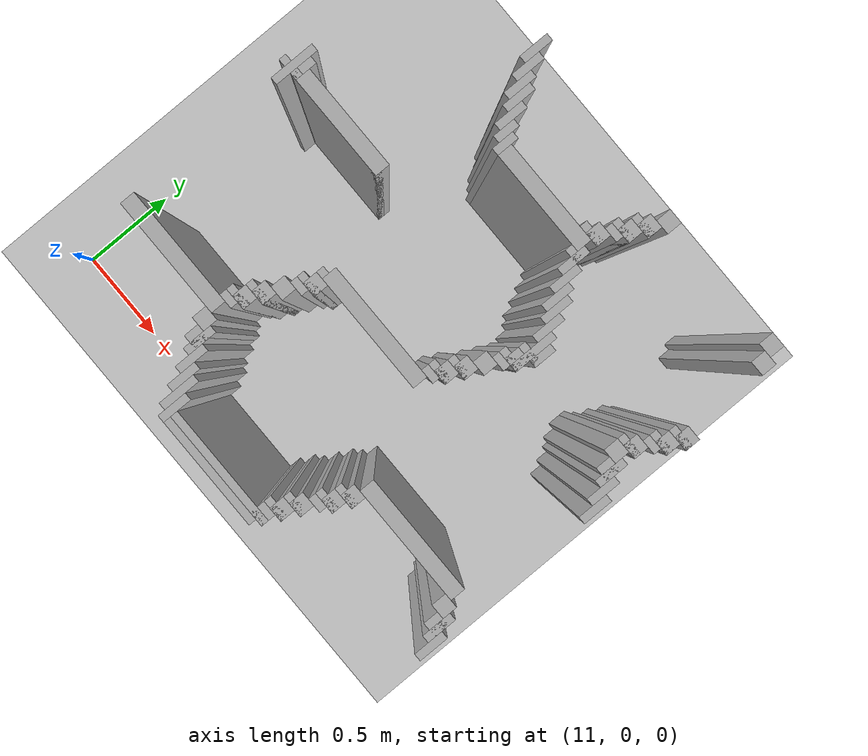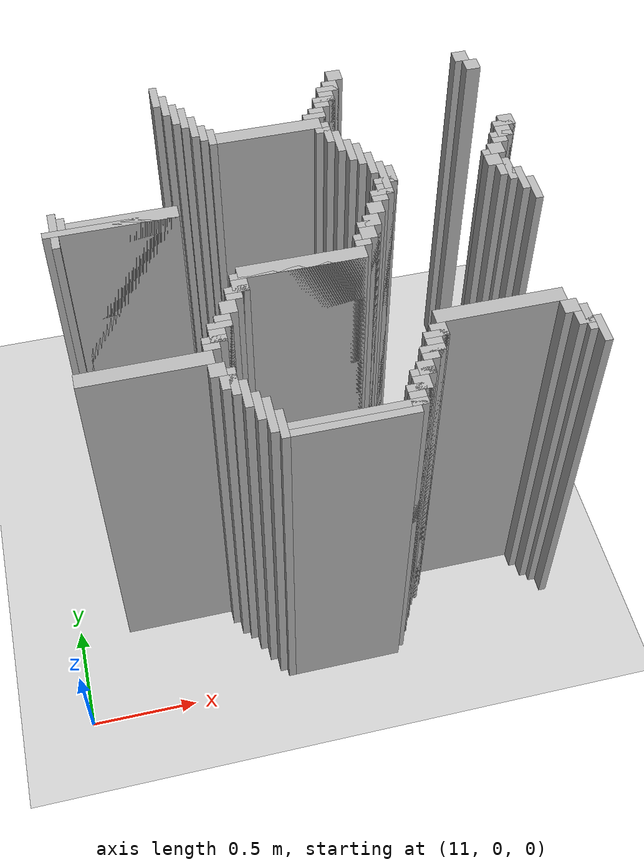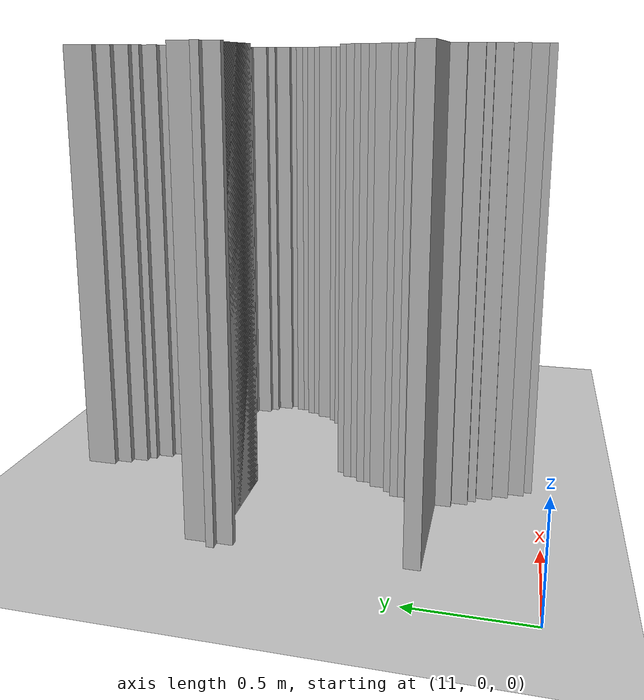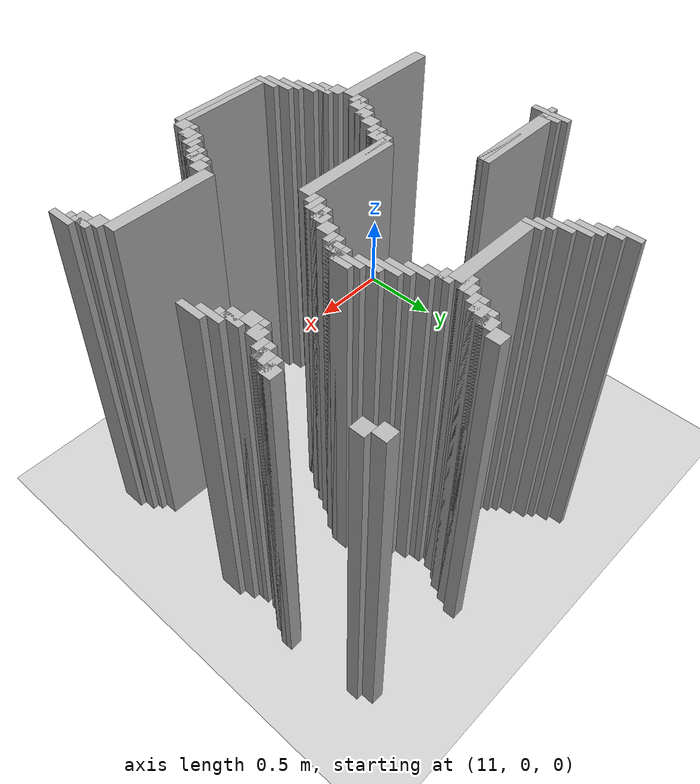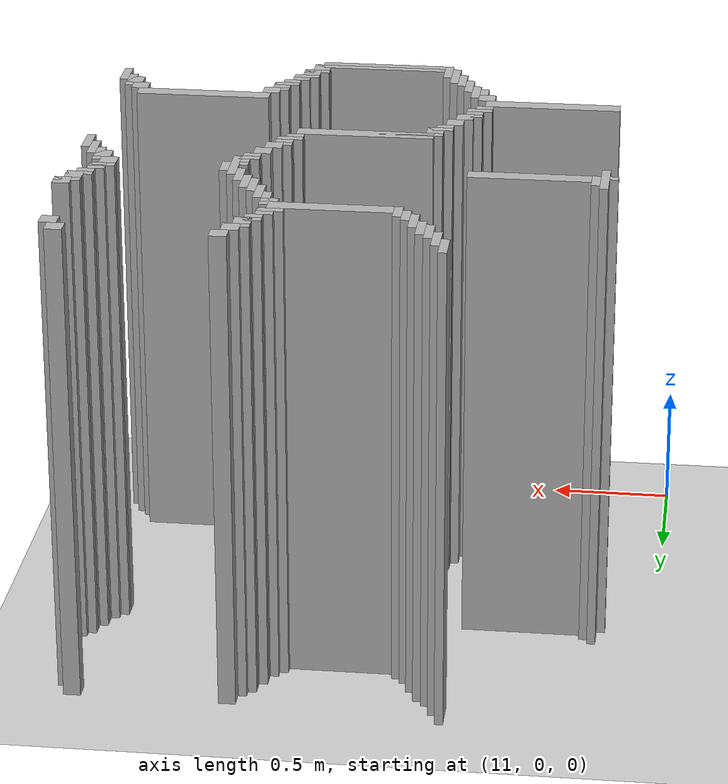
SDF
<sdf version="1.6">
 <world name="slam_world">
  <model name="ground_plane">
   <static>true</static>
   <link name="link">
    <collision name="collision">
     <geometry><plane><normal>0 0 1</normal><size>100 100</size></plane></geometry>
    </collision>
    <visual name="visual">
     <geometry><plane><normal>0 0 1</normal><size>100 100</size></plane></geometry>
     <material>
      <ambient>0.8 0.8 0.8 1</ambient>
      <diffuse>0.8 0.8 0.8 1</diffuse>
      <specular>0.8 0.8 0.8 1</specular>
     </material>
    </visual>
   </link>
  </model>
  <model name="wall_5173">
   <static>true</static>
   <pose>11.81554524361949 2.088167053364269 1.0 0 0 0</pose>
   <link name="link">
    <collision name="collision">
     <geometry><box><size>0.03480278422273782 0.13921113689095127 2.0</size></box></geometry>
    </collision>
    <visual name="visual">
     <geometry><box><size>0.03480278422273782 0.13921113689095127 2.0</size></box></geometry>
     <material><ambient>0.5 0.5 0.5 1</ambient><diffuse>0.7 0.7 0.7 1</diffuse></material>
    </visual>
   </link>
  </model>
  <model name="wall_5203">
   <static>true</static>
   <pose>11.850348027842227 2.0185614849187936 1.0 0 0 0</pose>
   <link name="link">
    <collision name="collision">
     <geometry><box><size>0.03480278422273782 0.13921113689095127 2.0</size></box></geometry>
    </collision>
    <visual name="visual">
     <geometry><box><size>0.03480278422273782 0.13921113689095127 2.0</size></box></geometry>
     <material><ambient>0.5 0.5 0.5 1</ambient><diffuse>0.7 0.7 0.7 1</diffuse></material>
    </visual>
   </link>
  </model>
  <model name="wall_5204">
   <static>true</static>
   <pose>12.668213457076565 2.053364269141531 1.0 0 0 0</pose>
   <link name="link">
    <collision name="collision">
     <geometry><box><size>0.06960556844547564 0.06960556844547564 2.0</size></box></geometry>
    </collision>
    <visual name="visual">
     <geometry><box><size>0.06960556844547564 0.06960556844547564 2.0</size></box></geometry>
     <material><ambient>0.5 0.5 0.5 1</ambient><diffuse>0.7 0.7 0.7 1</diffuse></material>
    </visual>
   </link>
  </model>
  <model name="wall_5205">
   <static>true</static>
   <pose>13.294663573085847 2.053364269141531 1.0 0 0 0</pose>
   <link name="link">
    <collision name="collision">
     <geometry><box><size>0.06960556844547564 0.06960556844547564 2.0</size></box></geometry>
    </collision>
    <visual name="visual">
     <geometry><box><size>0.06960556844547564 0.06960556844547564 2.0</size></box></geometry>
     <material><ambient>0.5 0.5 0.5 1</ambient><diffuse>0.7 0.7 0.7 1</diffuse></material>
    </visual>
   </link>
  </model>
  <model name="wall_5218">
   <static>true</static>
   <pose>11.885150812064964 1.948955916473318 1.0 0 0 0</pose>
   <link name="link">
    <collision name="collision">
     <geometry><box><size>0.03480278422273782 0.13921113689095127 2.0</size></box></geometry>
    </collision>
    <visual name="visual">
     <geometry><box><size>0.03480278422273782 0.13921113689095127 2.0</size></box></geometry>
     <material><ambient>0.5 0.5 0.5 1</ambient><diffuse>0.7 0.7 0.7 1</diffuse></material>
    </visual>
   </link>
  </model>
  <model name="wall_5219">
   <static>true</static>
   <pose>12.633410672853827 1.9837587006960555 1.0 0 0 0</pose>
   <link name="link">
    <collision name="collision">
     <geometry><box><size>0.06960556844547564 0.06960556844547564 2.0</size></box></geometry>
    </collision>
    <visual name="visual">
     <geometry><box><size>0.06960556844547564 0.06960556844547564 2.0</size></box></geometry>
     <material><ambient>0.5 0.5 0.5 1</ambient><diffuse>0.7 0.7 0.7 1</diffuse></material>
    </visual>
   </link>
  </model>
  <model name="wall_5220">
   <static>true</static>
   <pose>13.329466357308585 1.9837587006960555 1.0 0 0 0</pose>
   <link name="link">
    <collision name="collision">
     <geometry><box><size>0.06960556844547564 0.06960556844547564 2.0</size></box></geometry>
    </collision>
    <visual name="visual">
     <geometry><box><size>0.06960556844547564 0.06960556844547564 2.0</size></box></geometry>
     <material><ambient>0.5 0.5 0.5 1</ambient><diffuse>0.7 0.7 0.7 1</diffuse></material>
    </visual>
   </link>
  </model>
  <model name="wall_5233">
   <static>true</static>
   <pose>11.919953596287703 1.91415313225058 1.0 0 0 0</pose>
   <link name="link">
    <collision name="collision">
     <geometry><box><size>0.03480278422273782 0.13921113689095127 2.0</size></box></geometry>
    </collision>
    <visual name="visual">
     <geometry><box><size>0.03480278422273782 0.13921113689095127 2.0</size></box></geometry>
     <material><ambient>0.5 0.5 0.5 1</ambient><diffuse>0.7 0.7 0.7 1</diffuse></material>
    </visual>
   </link>
  </model>
  <model name="wall_5234">
   <static>true</static>
   <pose>12.616009280742459 1.9663573085846866 1.0 0 0 0</pose>
   <link name="link">
    <collision name="collision">
     <geometry><box><size>0.10440835266821345 0.03480278422273782 2.0</size></box></geometry>
    </collision>
    <visual name="visual">
     <geometry><box><size>0.10440835266821345 0.03480278422273782 2.0</size></box></geometry>
     <material><ambient>0.5 0.5 0.5 1</ambient><diffuse>0.7 0.7 0.7 1</diffuse></material>
    </visual>
   </link>
  </model>
  <model name="wall_5245">
   <static>true</static>
   <pose>12.59860788863109 1.91415313225058 1.0 0 0 0</pose>
   <link name="link">
    <collision name="collision">
     <geometry><box><size>0.06960556844547564 0.06960556844547564 2.0</size></box></geometry>
    </collision>
    <visual name="visual">
     <geometry><box><size>0.06960556844547564 0.06960556844547564 2.0</size></box></geometry>
     <material><ambient>0.5 0.5 0.5 1</ambient><diffuse>0.7 0.7 0.7 1</diffuse></material>
    </visual>
   </link>
  </model>
  <model name="wall_5258">
   <static>true</static>
   <pose>11.95475638051044 1.8445475638051043 1.0 0 0 0</pose>
   <link name="link">
    <collision name="collision">
     <geometry><box><size>0.03480278422273782 0.13921113689095127 2.0</size></box></geometry>
    </collision>
    <visual name="visual">
     <geometry><box><size>0.03480278422273782 0.13921113689095127 2.0</size></box></geometry>
     <material><ambient>0.5 0.5 0.5 1</ambient><diffuse>0.7 0.7 0.7 1</diffuse></material>
    </visual>
   </link>
  </model>
  <model name="wall_5259">
   <static>true</static>
   <pose>12.581206496519721 1.896751740139211 1.0 0 0 0</pose>
   <link name="link">
    <collision name="collision">
     <geometry><box><size>0.10440835266821345 0.03480278422273782 2.0</size></box></geometry>
    </collision>
    <visual name="visual">
     <geometry><box><size>0.10440835266821345 0.03480278422273782 2.0</size></box></geometry>
     <material><ambient>0.5 0.5 0.5 1</ambient><diffuse>0.7 0.7 0.7 1</diffuse></material>
    </visual>
   </link>
  </model>
  <model name="wall_5270">
   <static>true</static>
   <pose>12.563805104408353 1.8619489559164732 1.0 0 0 0</pose>
   <link name="link">
    <collision name="collision">
     <geometry><box><size>0.06960556844547564 0.03480278422273782 2.0</size></box></geometry>
    </collision>
    <visual name="visual">
     <geometry><box><size>0.06960556844547564 0.03480278422273782 2.0</size></box></geometry>
     <material><ambient>0.5 0.5 0.5 1</ambient><diffuse>0.7 0.7 0.7 1</diffuse></material>
    </visual>
   </link>
  </model>
  <model name="wall_5282">
   <static>true</static>
   <pose>11.989559164733178 1.7923433874709975 1.0 0 0 0</pose>
   <link name="link">
    <collision name="collision">
     <geometry><box><size>0.03480278422273782 0.10440835266821345 2.0</size></box></geometry>
    </collision>
    <visual name="visual">
     <geometry><box><size>0.03480278422273782 0.10440835266821345 2.0</size></box></geometry>
     <material><ambient>0.5 0.5 0.5 1</ambient><diffuse>0.7 0.7 0.7 1</diffuse></material>
    </visual>
   </link>
  </model>
  <model name="wall_5283">
   <static>true</static>
   <pose>12.529002320185615 1.8097447795823665 1.0 0 0 0</pose>
   <link name="link">
    <collision name="collision">
     <geometry><box><size>0.06960556844547564 0.06960556844547564 2.0</size></box></geometry>
    </collision>
    <visual name="visual">
     <geometry><box><size>0.06960556844547564 0.06960556844547564 2.0</size></box></geometry>
     <material><ambient>0.5 0.5 0.5 1</ambient><diffuse>0.7 0.7 0.7 1</diffuse></material>
    </visual>
   </link>
  </model>
  <model name="wall_5297">
   <static>true</static>
   <pose>12.024361948955915 1.75754060324826 1.0 0 0 0</pose>
   <link name="link">
    <collision name="collision">
     <geometry><box><size>0.03480278422273782 0.10440835266821345 2.0</size></box></geometry>
    </collision>
    <visual name="visual">
     <geometry><box><size>0.03480278422273782 0.10440835266821345 2.0</size></box></geometry>
     <material><ambient>0.5 0.5 0.5 1</ambient><diffuse>0.7 0.7 0.7 1</diffuse></material>
    </visual>
   </link>
  </model>
  <model name="wall_5298">
   <static>true</static>
   <pose>12.511600928074245 1.7923433874709975 1.0 0 0 0</pose>
   <link name="link">
    <collision name="collision">
     <geometry><box><size>0.10440835266821345 0.03480278422273782 2.0</size></box></geometry>
    </collision>
    <visual name="visual">
     <geometry><box><size>0.10440835266821345 0.03480278422273782 2.0</size></box></geometry>
     <material><ambient>0.5 0.5 0.5 1</ambient><diffuse>0.7 0.7 0.7 1</diffuse></material>
    </visual>
   </link>
  </model>
  <model name="wall_5312">
   <static>true</static>
   <pose>12.28538283062645 1.740139211136891 1.0 0 0 0</pose>
   <link name="link">
    <collision name="collision">
     <geometry><box><size>0.4872389791183295 0.06960556844547564 2.0</size></box></geometry>
    </collision>
    <visual name="visual">
     <geometry><box><size>0.4872389791183295 0.06960556844547564 2.0</size></box></geometry>
     <material><ambient>0.5 0.5 0.5 1</ambient><diffuse>0.7 0.7 0.7 1</diffuse></material>
    </visual>
   </link>
  </model>
  <model name="wall_5324">
   <static>true</static>
   <pose>12.546403712296984 1.6705336426914152 1.0 0 0 0</pose>
   <link name="link">
    <collision name="collision">
     <geometry><box><size>0.03480278422273782 0.13921113689095127 2.0</size></box></geometry>
    </collision>
    <visual name="visual">
     <geometry><box><size>0.03480278422273782 0.13921113689095127 2.0</size></box></geometry>
     <material><ambient>0.5 0.5 0.5 1</ambient><diffuse>0.7 0.7 0.7 1</diffuse></material>
    </visual>
   </link>
  </model>
  <model name="wall_5336">
   <static>true</static>
   <pose>12.529002320185615 1.6879350348027842 1.0 0 0 0</pose>
   <link name="link">
    <collision name="collision">
     <geometry><box><size>0.06960556844547564 0.03480278422273782 2.0</size></box></geometry>
    </collision>
    <visual name="visual">
     <geometry><box><size>0.06960556844547564 0.03480278422273782 2.0</size></box></geometry>
     <material><ambient>0.5 0.5 0.5 1</ambient><diffuse>0.7 0.7 0.7 1</diffuse></material>
    </visual>
   </link>
  </model>
  <model name="wall_5349">
   <static>true</static>
   <pose>12.581206496519721 1.6009280742459395 1.0 0 0 0</pose>
   <link name="link">
    <collision name="collision">
     <geometry><box><size>0.03480278422273782 0.13921113689095127 2.0</size></box></geometry>
    </collision>
    <visual name="visual">
     <geometry><box><size>0.03480278422273782 0.13921113689095127 2.0</size></box></geometry>
     <material><ambient>0.5 0.5 0.5 1</ambient><diffuse>0.7 0.7 0.7 1</diffuse></material>
    </visual>
   </link>
  </model>
  <model name="wall_5362">
   <static>true</static>
   <pose>12.616009280742459 1.531322505800464 1.0 0 0 0</pose>
   <link name="link">
    <collision name="collision">
     <geometry><box><size>0.03480278422273782 0.13921113689095127 2.0</size></box></geometry>
    </collision>
    <visual name="visual">
     <geometry><box><size>0.03480278422273782 0.13921113689095127 2.0</size></box></geometry>
     <material><ambient>0.5 0.5 0.5 1</ambient><diffuse>0.7 0.7 0.7 1</diffuse></material>
    </visual>
   </link>
  </model>
  <model name="wall_5363">
   <static>true</static>
   <pose>13.364269141531322 1.5661252900232019 1.0 0 0 0</pose>
   <link name="link">
    <collision name="collision">
     <geometry><box><size>0.06960556844547564 0.06960556844547564 2.0</size></box></geometry>
    </collision>
    <visual name="visual">
     <geometry><box><size>0.06960556844547564 0.06960556844547564 2.0</size></box></geometry>
     <material><ambient>0.5 0.5 0.5 1</ambient><diffuse>0.7 0.7 0.7 1</diffuse></material>
    </visual>
   </link>
  </model>
  <model name="wall_5375">
   <static>true</static>
   <pose>12.650812064965196 1.4965197215777262 1.0 0 0 0</pose>
   <link name="link">
    <collision name="collision">
     <geometry><box><size>0.03480278422273782 0.13921113689095127 2.0</size></box></geometry>
    </collision>
    <visual name="visual">
     <geometry><box><size>0.03480278422273782 0.13921113689095127 2.0</size></box></geometry>
     <material><ambient>0.5 0.5 0.5 1</ambient><diffuse>0.7 0.7 0.7 1</diffuse></material>
    </visual>
   </link>
  </model>
  <model name="wall_5376">
   <static>true</static>
   <pose>13.346867749419953 1.548723897911833 1.0 0 0 0</pose>
   <link name="link">
    <collision name="collision">
     <geometry><box><size>0.10440835266821345 0.03480278422273782 2.0</size></box></geometry>
    </collision>
    <visual name="visual">
     <geometry><box><size>0.10440835266821345 0.03480278422273782 2.0</size></box></geometry>
     <material><ambient>0.5 0.5 0.5 1</ambient><diffuse>0.7 0.7 0.7 1</diffuse></material>
    </visual>
   </link>
  </model>
  <model name="wall_5385">
   <static>true</static>
   <pose>13.329466357308585 1.4965197215777262 1.0 0 0 0</pose>
   <link name="link">
    <collision name="collision">
     <geometry><box><size>0.06960556844547564 0.06960556844547564 2.0</size></box></geometry>
    </collision>
    <visual name="visual">
     <geometry><box><size>0.06960556844547564 0.06960556844547564 2.0</size></box></geometry>
     <material><ambient>0.5 0.5 0.5 1</ambient><diffuse>0.7 0.7 0.7 1</diffuse></material>
    </visual>
   </link>
  </model>
  <model name="wall_5397">
   <static>true</static>
   <pose>12.685614849187935 1.4269141531322505 1.0 0 0 0</pose>
   <link name="link">
    <collision name="collision">
     <geometry><box><size>0.03480278422273782 0.13921113689095127 2.0</size></box></geometry>
    </collision>
    <visual name="visual">
     <geometry><box><size>0.03480278422273782 0.13921113689095127 2.0</size></box></geometry>
     <material><ambient>0.5 0.5 0.5 1</ambient><diffuse>0.7 0.7 0.7 1</diffuse></material>
    </visual>
   </link>
  </model>
  <model name="wall_5398">
   <static>true</static>
   <pose>13.312064965197216 1.4791183294663572 1.0 0 0 0</pose>
   <link name="link">
    <collision name="collision">
     <geometry><box><size>0.10440835266821345 0.03480278422273782 2.0</size></box></geometry>
    </collision>
    <visual name="visual">
     <geometry><box><size>0.10440835266821345 0.03480278422273782 2.0</size></box></geometry>
     <material><ambient>0.5 0.5 0.5 1</ambient><diffuse>0.7 0.7 0.7 1</diffuse></material>
    </visual>
   </link>
  </model>
  <model name="wall_5406">
   <static>true</static>
   <pose>13.294663573085847 1.4443155452436194 1.0 0 0 0</pose>
   <link name="link">
    <collision name="collision">
     <geometry><box><size>0.06960556844547564 0.03480278422273782 2.0</size></box></geometry>
    </collision>
    <visual name="visual">
     <geometry><box><size>0.06960556844547564 0.03480278422273782 2.0</size></box></geometry>
     <material><ambient>0.5 0.5 0.5 1</ambient><diffuse>0.7 0.7 0.7 1</diffuse></material>
    </visual>
   </link>
  </model>
  <model name="wall_5416">
   <static>true</static>
   <pose>11.258700696055683 1.322505800464037 1.0 0 0 0</pose>
   <link name="link">
    <collision name="collision">
     <geometry><box><size>0.03480278422273782 0.2088167053364269 2.0</size></box></geometry>
    </collision>
    <visual name="visual">
     <geometry><box><size>0.03480278422273782 0.2088167053364269 2.0</size></box></geometry>
     <material><ambient>0.5 0.5 0.5 1</ambient><diffuse>0.7 0.7 0.7 1</diffuse></material>
    </visual>
   </link>
  </model>
  <model name="wall_5417">
   <static>true</static>
   <pose>12.720417633410673 1.322505800464037 1.0 0 0 0</pose>
   <link name="link">
    <collision name="collision">
     <geometry><box><size>0.03480278422273782 0.2088167053364269 2.0</size></box></geometry>
    </collision>
    <visual name="visual">
     <geometry><box><size>0.03480278422273782 0.2088167053364269 2.0</size></box></geometry>
     <material><ambient>0.5 0.5 0.5 1</ambient><diffuse>0.7 0.7 0.7 1</diffuse></material>
    </visual>
   </link>
  </model>
  <model name="wall_5418">
   <static>true</static>
   <pose>13.259860788863108 1.3921113689095126 1.0 0 0 0</pose>
   <link name="link">
    <collision name="collision">
     <geometry><box><size>0.06960556844547564 0.06960556844547564 2.0</size></box></geometry>
    </collision>
    <visual name="visual">
     <geometry><box><size>0.06960556844547564 0.06960556844547564 2.0</size></box></geometry>
     <material><ambient>0.5 0.5 0.5 1</ambient><diffuse>0.7 0.7 0.7 1</diffuse></material>
    </visual>
   </link>
  </model>
  <model name="wall_5427">
   <static>true</static>
   <pose>11.293503480278423 1.339907192575406 1.0 0 0 0</pose>
   <link name="link">
    <collision name="collision">
     <geometry><box><size>0.03480278422273782 0.10440835266821345 2.0</size></box></geometry>
    </collision>
    <visual name="visual">
     <geometry><box><size>0.03480278422273782 0.10440835266821345 2.0</size></box></geometry>
     <material><ambient>0.5 0.5 0.5 1</ambient><diffuse>0.7 0.7 0.7 1</diffuse></material>
    </visual>
   </link>
  </model>
  <model name="wall_5428">
   <static>true</static>
   <pose>12.75522041763341 1.339907192575406 1.0 0 0 0</pose>
   <link name="link">
    <collision name="collision">
     <geometry><box><size>0.03480278422273782 0.10440835266821345 2.0</size></box></geometry>
    </collision>
    <visual name="visual">
     <geometry><box><size>0.03480278422273782 0.10440835266821345 2.0</size></box></geometry>
     <material><ambient>0.5 0.5 0.5 1</ambient><diffuse>0.7 0.7 0.7 1</diffuse></material>
    </visual>
   </link>
  </model>
  <model name="wall_5429">
   <static>true</static>
   <pose>13.24245939675174 1.3747099767981439 1.0 0 0 0</pose>
   <link name="link">
    <collision name="collision">
     <geometry><box><size>0.10440835266821345 0.03480278422273782 2.0</size></box></geometry>
    </collision>
    <visual name="visual">
     <geometry><box><size>0.10440835266821345 0.03480278422273782 2.0</size></box></geometry>
     <material><ambient>0.5 0.5 0.5 1</ambient><diffuse>0.7 0.7 0.7 1</diffuse></material>
    </visual>
   </link>
  </model>
  <model name="wall_5439">
   <static>true</static>
   <pose>11.554524361948955 1.322505800464037 1.0 0 0 0</pose>
   <link name="link">
    <collision name="collision">
     <geometry><box><size>0.4872389791183295 0.06960556844547564 2.0</size></box></geometry>
    </collision>
    <visual name="visual">
     <geometry><box><size>0.4872389791183295 0.06960556844547564 2.0</size></box></geometry>
     <material><ambient>0.5 0.5 0.5 1</ambient><diffuse>0.7 0.7 0.7 1</diffuse></material>
    </visual>
   </link>
  </model>
  <model name="wall_5440">
   <static>true</static>
   <pose>13.22505800464037 1.322505800464037 1.0 0 0 0</pose>
   <link name="link">
    <collision name="collision">
     <geometry><box><size>0.06960556844547564 0.06960556844547564 2.0</size></box></geometry>
    </collision>
    <visual name="visual">
     <geometry><box><size>0.06960556844547564 0.06960556844547564 2.0</size></box></geometry>
     <material><ambient>0.5 0.5 0.5 1</ambient><diffuse>0.7 0.7 0.7 1</diffuse></material>
    </visual>
   </link>
  </model>
  <model name="wall_5451">
   <static>true</static>
   <pose>11.502320185614849 1.3051044083526682 1.0 0 0 0</pose>
   <link name="link">
    <collision name="collision">
     <geometry><box><size>0.5916473317865429 0.03480278422273782 2.0</size></box></geometry>
    </collision>
    <visual name="visual">
     <geometry><box><size>0.5916473317865429 0.03480278422273782 2.0</size></box></geometry>
     <material><ambient>0.5 0.5 0.5 1</ambient><diffuse>0.7 0.7 0.7 1</diffuse></material>
    </visual>
   </link>
  </model>
  <model name="wall_5452">
   <static>true</static>
   <pose>12.720417633410673 1.3051044083526682 1.0 0 0 0</pose>
   <link name="link">
    <collision name="collision">
     <geometry><box><size>0.10440835266821345 0.03480278422273782 2.0</size></box></geometry>
    </collision>
    <visual name="visual">
     <geometry><box><size>0.10440835266821345 0.03480278422273782 2.0</size></box></geometry>
     <material><ambient>0.5 0.5 0.5 1</ambient><diffuse>0.7 0.7 0.7 1</diffuse></material>
    </visual>
   </link>
  </model>
  <model name="wall_5453">
   <static>true</static>
   <pose>13.277262180974477 1.2529002320185614 1.0 0 0 0</pose>
   <link name="link">
    <collision name="collision">
     <geometry><box><size>0.03480278422273782 0.13921113689095127 2.0</size></box></geometry>
    </collision>
    <visual name="visual">
     <geometry><box><size>0.03480278422273782 0.13921113689095127 2.0</size></box></geometry>
     <material><ambient>0.5 0.5 0.5 1</ambient><diffuse>0.7 0.7 0.7 1</diffuse></material>
    </visual>
   </link>
  </model>
  <model name="wall_5467">
   <static>true</static>
   <pose>12.703016241299304 1.2529002320185614 1.0 0 0 0</pose>
   <link name="link">
    <collision name="collision">
     <geometry><box><size>0.06960556844547564 0.06960556844547564 2.0</size></box></geometry>
    </collision>
    <visual name="visual">
     <geometry><box><size>0.06960556844547564 0.06960556844547564 2.0</size></box></geometry>
     <material><ambient>0.5 0.5 0.5 1</ambient><diffuse>0.7 0.7 0.7 1</diffuse></material>
    </visual>
   </link>
  </model>
  <model name="wall_5468">
   <static>true</static>
   <pose>13.259860788863108 1.2529002320185614 1.0 0 0 0</pose>
   <link name="link">
    <collision name="collision">
     <geometry><box><size>0.06960556844547564 0.06960556844547564 2.0</size></box></geometry>
    </collision>
    <visual name="visual">
     <geometry><box><size>0.06960556844547564 0.06960556844547564 2.0</size></box></geometry>
     <material><ambient>0.5 0.5 0.5 1</ambient><diffuse>0.7 0.7 0.7 1</diffuse></material>
    </visual>
   </link>
  </model>
  <model name="wall_5482">
   <static>true</static>
   <pose>12.685614849187935 1.2354988399071924 1.0 0 0 0</pose>
   <link name="link">
    <collision name="collision">
     <geometry><box><size>0.10440835266821345 0.03480278422273782 2.0</size></box></geometry>
    </collision>
    <visual name="visual">
     <geometry><box><size>0.10440835266821345 0.03480278422273782 2.0</size></box></geometry>
     <material><ambient>0.5 0.5 0.5 1</ambient><diffuse>0.7 0.7 0.7 1</diffuse></material>
    </visual>
   </link>
  </model>
  <model name="wall_5483">
   <static>true</static>
   <pose>13.312064965197216 1.1832946635730859 1.0 0 0 0</pose>
   <link name="link">
    <collision name="collision">
     <geometry><box><size>0.03480278422273782 0.13921113689095127 2.0</size></box></geometry>
    </collision>
    <visual name="visual">
     <geometry><box><size>0.03480278422273782 0.13921113689095127 2.0</size></box></geometry>
     <material><ambient>0.5 0.5 0.5 1</ambient><diffuse>0.7 0.7 0.7 1</diffuse></material>
    </visual>
   </link>
  </model>
  <model name="wall_5496">
   <static>true</static>
   <pose>12.668213457076565 1.2006960556844548 1.0 0 0 0</pose>
   <link name="link">
    <collision name="collision">
     <geometry><box><size>0.06960556844547564 0.03480278422273782 2.0</size></box></geometry>
    </collision>
    <visual name="visual">
     <geometry><box><size>0.06960556844547564 0.03480278422273782 2.0</size></box></geometry>
     <material><ambient>0.5 0.5 0.5 1</ambient><diffuse>0.7 0.7 0.7 1</diffuse></material>
    </visual>
   </link>
  </model>
  <model name="wall_5509">
   <static>true</static>
   <pose>12.633410672853827 1.148491879350348 1.0 0 0 0</pose>
   <link name="link">
    <collision name="collision">
     <geometry><box><size>0.06960556844547564 0.06960556844547564 2.0</size></box></geometry>
    </collision>
    <visual name="visual">
     <geometry><box><size>0.06960556844547564 0.06960556844547564 2.0</size></box></geometry>
     <material><ambient>0.5 0.5 0.5 1</ambient><diffuse>0.7 0.7 0.7 1</diffuse></material>
    </visual>
   </link>
  </model>
  <model name="wall_5510">
   <static>true</static>
   <pose>13.346867749419953 1.1136890951276102 1.0 0 0 0</pose>
   <link name="link">
    <collision name="collision">
     <geometry><box><size>0.03480278422273782 0.13921113689095127 2.0</size></box></geometry>
    </collision>
    <visual name="visual">
     <geometry><box><size>0.03480278422273782 0.13921113689095127 2.0</size></box></geometry>
     <material><ambient>0.5 0.5 0.5 1</ambient><diffuse>0.7 0.7 0.7 1</diffuse></material>
    </visual>
   </link>
  </model>
  <model name="wall_5524">
   <static>true</static>
   <pose>12.59860788863109 1.0788863109048723 1.0 0 0 0</pose>
   <link name="link">
    <collision name="collision">
     <geometry><box><size>0.06960556844547564 0.06960556844547564 2.0</size></box></geometry>
    </collision>
    <visual name="visual">
     <geometry><box><size>0.06960556844547564 0.06960556844547564 2.0</size></box></geometry>
     <material><ambient>0.5 0.5 0.5 1</ambient><diffuse>0.7 0.7 0.7 1</diffuse></material>
    </visual>
   </link>
  </model>
  <model name="wall_5539">
   <static>true</static>
   <pose>12.581206496519721 1.0614849187935034 1.0 0 0 0</pose>
   <link name="link">
    <collision name="collision">
     <geometry><box><size>0.10440835266821345 0.03480278422273782 2.0</size></box></geometry>
    </collision>
    <visual name="visual">
     <geometry><box><size>0.10440835266821345 0.03480278422273782 2.0</size></box></geometry>
     <material><ambient>0.5 0.5 0.5 1</ambient><diffuse>0.7 0.7 0.7 1</diffuse></material>
    </visual>
   </link>
  </model>
  <model name="wall_5550">
   <static>true</static>
   <pose>12.563805104408353 1.0092807424593968 1.0 0 0 0</pose>
   <link name="link">
    <collision name="collision">
     <geometry><box><size>0.06960556844547564 0.06960556844547564 2.0</size></box></geometry>
    </collision>
    <visual name="visual">
     <geometry><box><size>0.06960556844547564 0.06960556844547564 2.0</size></box></geometry>
     <material><ambient>0.5 0.5 0.5 1</ambient><diffuse>0.7 0.7 0.7 1</diffuse></material>
    </visual>
   </link>
  </model>
  <model name="wall_5563">
   <static>true</static>
   <pose>12.546403712296984 0.9918793503480278 1.0 0 0 0</pose>
   <link name="link">
    <collision name="collision">
     <geometry><box><size>0.10440835266821345 0.03480278422273782 2.0</size></box></geometry>
    </collision>
    <visual name="visual">
     <geometry><box><size>0.10440835266821345 0.03480278422273782 2.0</size></box></geometry>
     <material><ambient>0.5 0.5 0.5 1</ambient><diffuse>0.7 0.7 0.7 1</diffuse></material>
    </visual>
   </link>
  </model>
  <model name="wall_5574">
   <static>true</static>
   <pose>12.529002320185615 0.95707656612529 1.0 0 0 0</pose>
   <link name="link">
    <collision name="collision">
     <geometry><box><size>0.06960556844547564 0.03480278422273782 2.0</size></box></geometry>
    </collision>
    <visual name="visual">
     <geometry><box><size>0.06960556844547564 0.03480278422273782 2.0</size></box></geometry>
     <material><ambient>0.5 0.5 0.5 1</ambient><diffuse>0.7 0.7 0.7 1</diffuse></material>
    </visual>
   </link>
  </model>
  <model name="wall_5584">
   <static>true</static>
   <pose>12.250580046403712 0.9048723897911832 1.0 0 0 0</pose>
   <link name="link">
    <collision name="collision">
     <geometry><box><size>0.5568445475638051 0.06960556844547564 2.0</size></box></geometry>
    </collision>
    <visual name="visual">
     <geometry><box><size>0.5568445475638051 0.06960556844547564 2.0</size></box></geometry>
     <material><ambient>0.5 0.5 0.5 1</ambient><diffuse>0.7 0.7 0.7 1</diffuse></material>
    </visual>
   </link>
  </model>
  <model name="wall_5592">
   <static>true</static>
   <pose>12.233178654292344 0.8874709976798143 1.0 0 0 0</pose>
   <link name="link">
    <collision name="collision">
     <geometry><box><size>0.5916473317865429 0.03480278422273782 2.0</size></box></geometry>
    </collision>
    <visual name="visual">
     <geometry><box><size>0.5916473317865429 0.03480278422273782 2.0</size></box></geometry>
     <material><ambient>0.5 0.5 0.5 1</ambient><diffuse>0.7 0.7 0.7 1</diffuse></material>
    </visual>
   </link>
  </model>
  <model name="wall_5599">
   <static>true</static>
   <pose>11.97215777262181 0.8352668213457076 1.0 0 0 0</pose>
   <link name="link">
    <collision name="collision">
     <geometry><box><size>0.06960556844547564 0.06960556844547564 2.0</size></box></geometry>
    </collision>
    <visual name="visual">
     <geometry><box><size>0.06960556844547564 0.06960556844547564 2.0</size></box></geometry>
     <material><ambient>0.5 0.5 0.5 1</ambient><diffuse>0.7 0.7 0.7 1</diffuse></material>
    </visual>
   </link>
  </model>
  <model name="wall_5606">
   <static>true</static>
   <pose>11.95475638051044 0.8178654292343387 1.0 0 0 0</pose>
   <link name="link">
    <collision name="collision">
     <geometry><box><size>0.10440835266821345 0.03480278422273782 2.0</size></box></geometry>
    </collision>
    <visual name="visual">
     <geometry><box><size>0.10440835266821345 0.03480278422273782 2.0</size></box></geometry>
     <material><ambient>0.5 0.5 0.5 1</ambient><diffuse>0.7 0.7 0.7 1</diffuse></material>
    </visual>
   </link>
  </model>
  <model name="wall_5611">
   <static>true</static>
   <pose>11.937354988399072 0.7830626450116009 1.0 0 0 0</pose>
   <link name="link">
    <collision name="collision">
     <geometry><box><size>0.06960556844547564 0.03480278422273782 2.0</size></box></geometry>
    </collision>
    <visual name="visual">
     <geometry><box><size>0.06960556844547564 0.03480278422273782 2.0</size></box></geometry>
     <material><ambient>0.5 0.5 0.5 1</ambient><diffuse>0.7 0.7 0.7 1</diffuse></material>
    </visual>
   </link>
  </model>
  <model name="wall_5617">
   <static>true</static>
   <pose>11.902552204176333 0.7308584686774942 1.0 0 0 0</pose>
   <link name="link">
    <collision name="collision">
     <geometry><box><size>0.06960556844547564 0.06960556844547564 2.0</size></box></geometry>
    </collision>
    <visual name="visual">
     <geometry><box><size>0.06960556844547564 0.06960556844547564 2.0</size></box></geometry>
     <material><ambient>0.5 0.5 0.5 1</ambient><diffuse>0.7 0.7 0.7 1</diffuse></material>
    </visual>
   </link>
  </model>
  <model name="wall_5624">
   <static>true</static>
   <pose>11.867749419953595 0.6612529002320185 1.0 0 0 0</pose>
   <link name="link">
    <collision name="collision">
     <geometry><box><size>0.06960556844547564 0.06960556844547564 2.0</size></box></geometry>
    </collision>
    <visual name="visual">
     <geometry><box><size>0.06960556844547564 0.06960556844547564 2.0</size></box></geometry>
     <material><ambient>0.5 0.5 0.5 1</ambient><diffuse>0.7 0.7 0.7 1</diffuse></material>
    </visual>
   </link>
  </model>
  <model name="wall_5631">
   <static>true</static>
   <pose>11.850348027842227 0.6438515081206496 1.0 0 0 0</pose>
   <link name="link">
    <collision name="collision">
     <geometry><box><size>0.10440835266821345 0.03480278422273782 2.0</size></box></geometry>
    </collision>
    <visual name="visual">
     <geometry><box><size>0.10440835266821345 0.03480278422273782 2.0</size></box></geometry>
     <material><ambient>0.5 0.5 0.5 1</ambient><diffuse>0.7 0.7 0.7 1</diffuse></material>
    </visual>
   </link>
  </model>
  <model name="wall_5636">
   <static>true</static>
   <pose>11.832946635730858 0.5916473317865429 1.0 0 0 0</pose>
   <link name="link">
    <collision name="collision">
     <geometry><box><size>0.06960556844547564 0.06960556844547564 2.0</size></box></geometry>
    </collision>
    <visual name="visual">
     <geometry><box><size>0.06960556844547564 0.06960556844547564 2.0</size></box></geometry>
     <material><ambient>0.5 0.5 0.5 1</ambient><diffuse>0.7 0.7 0.7 1</diffuse></material>
    </visual>
   </link>
  </model>
  <model name="wall_5642">
   <static>true</static>
   <pose>11.81554524361949 0.574245939675174 1.0 0 0 0</pose>
   <link name="link">
    <collision name="collision">
     <geometry><box><size>0.10440835266821345 0.03480278422273782 2.0</size></box></geometry>
    </collision>
    <visual name="visual">
     <geometry><box><size>0.10440835266821345 0.03480278422273782 2.0</size></box></geometry>
     <material><ambient>0.5 0.5 0.5 1</ambient><diffuse>0.7 0.7 0.7 1</diffuse></material>
    </visual>
   </link>
  </model>
  <model name="wall_5647">
   <static>true</static>
   <pose>11.79814385150812 0.5394431554524362 1.0 0 0 0</pose>
   <link name="link">
    <collision name="collision">
     <geometry><box><size>0.06960556844547564 0.03480278422273782 2.0</size></box></geometry>
    </collision>
    <visual name="visual">
     <geometry><box><size>0.06960556844547564 0.03480278422273782 2.0</size></box></geometry>
     <material><ambient>0.5 0.5 0.5 1</ambient><diffuse>0.7 0.7 0.7 1</diffuse></material>
    </visual>
   </link>
  </model>
  <model name="wall_5657">
   <static>true</static>
   <pose>11.519721577726218 0.4872389791183295 1.0 0 0 0</pose>
   <link name="link">
    <collision name="collision">
     <geometry><box><size>0.5568445475638051 0.06960556844547564 2.0</size></box></geometry>
    </collision>
    <visual name="visual">
     <geometry><box><size>0.5568445475638051 0.06960556844547564 2.0</size></box></geometry>
     <material><ambient>0.5 0.5 0.5 1</ambient><diffuse>0.7 0.7 0.7 1</diffuse></material>
    </visual>
   </link>
  </model>
  <model name="wall_5658">
   <static>true</static>
   <pose>12.981438515081207 0.4872389791183295 1.0 0 0 0</pose>
   <link name="link">
    <collision name="collision">
     <geometry><box><size>0.5568445475638051 0.06960556844547564 2.0</size></box></geometry>
    </collision>
    <visual name="visual">
     <geometry><box><size>0.5568445475638051 0.06960556844547564 2.0</size></box></geometry>
     <material><ambient>0.5 0.5 0.5 1</ambient><diffuse>0.7 0.7 0.7 1</diffuse></material>
    </visual>
   </link>
  </model>
  <model name="wall_5676">
   <static>true</static>
   <pose>11.79814385150812 0.4176334106728538 1.0 0 0 0</pose>
   <link name="link">
    <collision name="collision">
     <geometry><box><size>0.06960556844547564 0.06960556844547564 2.0</size></box></geometry>
    </collision>
    <visual name="visual">
     <geometry><box><size>0.06960556844547564 0.06960556844547564 2.0</size></box></geometry>
     <material><ambient>0.5 0.5 0.5 1</ambient><diffuse>0.7 0.7 0.7 1</diffuse></material>
    </visual>
   </link>
  </model>
  <model name="wall_5677">
   <static>true</static>
   <pose>12.703016241299304 0.4176334106728538 1.0 0 0 0</pose>
   <link name="link">
    <collision name="collision">
     <geometry><box><size>0.06960556844547564 0.06960556844547564 2.0</size></box></geometry>
    </collision>
    <visual name="visual">
     <geometry><box><size>0.06960556844547564 0.06960556844547564 2.0</size></box></geometry>
     <material><ambient>0.5 0.5 0.5 1</ambient><diffuse>0.7 0.7 0.7 1</diffuse></material>
    </visual>
   </link>
  </model>
  <model name="wall_5678">
   <static>true</static>
   <pose>13.259860788863108 0.4176334106728538 1.0 0 0 0</pose>
   <link name="link">
    <collision name="collision">
     <geometry><box><size>0.06960556844547564 0.06960556844547564 2.0</size></box></geometry>
    </collision>
    <visual name="visual">
     <geometry><box><size>0.06960556844547564 0.06960556844547564 2.0</size></box></geometry>
     <material><ambient>0.5 0.5 0.5 1</ambient><diffuse>0.7 0.7 0.7 1</diffuse></material>
    </visual>
   </link>
  </model>
  <model name="wall_5696">
   <static>true</static>
   <pose>11.850348027842227 0.34802784222737815 1.0 0 0 0</pose>
   <link name="link">
    <collision name="collision">
     <geometry><box><size>0.03480278422273782 0.13921113689095127 2.0</size></box></geometry>
    </collision>
    <visual name="visual">
     <geometry><box><size>0.03480278422273782 0.13921113689095127 2.0</size></box></geometry>
     <material><ambient>0.5 0.5 0.5 1</ambient><diffuse>0.7 0.7 0.7 1</diffuse></material>
    </visual>
   </link>
  </model>
  <model name="wall_5697">
   <static>true</static>
   <pose>12.685614849187935 0.4002320185614849 1.0 0 0 0</pose>
   <link name="link">
    <collision name="collision">
     <geometry><box><size>0.10440835266821345 0.03480278422273782 2.0</size></box></geometry>
    </collision>
    <visual name="visual">
     <geometry><box><size>0.10440835266821345 0.03480278422273782 2.0</size></box></geometry>
     <material><ambient>0.5 0.5 0.5 1</ambient><diffuse>0.7 0.7 0.7 1</diffuse></material>
    </visual>
   </link>
  </model>
  <model name="wall_5698">
   <static>true</static>
   <pose>13.312064965197216 0.34802784222737815 1.0 0 0 0</pose>
   <link name="link">
    <collision name="collision">
     <geometry><box><size>0.03480278422273782 0.13921113689095127 2.0</size></box></geometry>
    </collision>
    <visual name="visual">
     <geometry><box><size>0.03480278422273782 0.13921113689095127 2.0</size></box></geometry>
     <material><ambient>0.5 0.5 0.5 1</ambient><diffuse>0.7 0.7 0.7 1</diffuse></material>
    </visual>
   </link>
  </model>
  <model name="wall_5716">
   <static>true</static>
   <pose>11.832946635730858 0.34802784222737815 1.0 0 0 0</pose>
   <link name="link">
    <collision name="collision">
     <geometry><box><size>0.06960556844547564 0.06960556844547564 2.0</size></box></geometry>
    </collision>
    <visual name="visual">
     <geometry><box><size>0.06960556844547564 0.06960556844547564 2.0</size></box></geometry>
     <material><ambient>0.5 0.5 0.5 1</ambient><diffuse>0.7 0.7 0.7 1</diffuse></material>
    </visual>
   </link>
  </model>
  <model name="wall_5717">
   <static>true</static>
   <pose>12.668213457076565 0.34802784222737815 1.0 0 0 0</pose>
   <link name="link">
    <collision name="collision">
     <geometry><box><size>0.06960556844547564 0.06960556844547564 2.0</size></box></geometry>
    </collision>
    <visual name="visual">
     <geometry><box><size>0.06960556844547564 0.06960556844547564 2.0</size></box></geometry>
     <material><ambient>0.5 0.5 0.5 1</ambient><diffuse>0.7 0.7 0.7 1</diffuse></material>
    </visual>
   </link>
  </model>
  <model name="wall_5718">
   <static>true</static>
   <pose>13.294663573085847 0.34802784222737815 1.0 0 0 0</pose>
   <link name="link">
    <collision name="collision">
     <geometry><box><size>0.06960556844547564 0.06960556844547564 2.0</size></box></geometry>
    </collision>
    <visual name="visual">
     <geometry><box><size>0.06960556844547564 0.06960556844547564 2.0</size></box></geometry>
     <material><ambient>0.5 0.5 0.5 1</ambient><diffuse>0.7 0.7 0.7 1</diffuse></material>
    </visual>
   </link>
  </model>
  <model name="wall_5736">
   <static>true</static>
   <pose>11.885150812064964 0.27842227378190254 1.0 0 0 0</pose>
   <link name="link">
    <collision name="collision">
     <geometry><box><size>0.03480278422273782 0.13921113689095127 2.0</size></box></geometry>
    </collision>
    <visual name="visual">
     <geometry><box><size>0.03480278422273782 0.13921113689095127 2.0</size></box></geometry>
     <material><ambient>0.5 0.5 0.5 1</ambient><diffuse>0.7 0.7 0.7 1</diffuse></material>
    </visual>
   </link>
  </model>
  <model name="wall_5737">
   <static>true</static>
   <pose>12.650812064965196 0.3306264501160093 1.0 0 0 0</pose>
   <link name="link">
    <collision name="collision">
     <geometry><box><size>0.10440835266821345 0.03480278422273782 2.0</size></box></geometry>
    </collision>
    <visual name="visual">
     <geometry><box><size>0.10440835266821345 0.03480278422273782 2.0</size></box></geometry>
     <material><ambient>0.5 0.5 0.5 1</ambient><diffuse>0.7 0.7 0.7 1</diffuse></material>
    </visual>
   </link>
  </model>
  <model name="wall_5738">
   <static>true</static>
   <pose>13.346867749419953 0.27842227378190254 1.0 0 0 0</pose>
   <link name="link">
    <collision name="collision">
     <geometry><box><size>0.03480278422273782 0.13921113689095127 2.0</size></box></geometry>
    </collision>
    <visual name="visual">
     <geometry><box><size>0.03480278422273782 0.13921113689095127 2.0</size></box></geometry>
     <material><ambient>0.5 0.5 0.5 1</ambient><diffuse>0.7 0.7 0.7 1</diffuse></material>
    </visual>
   </link>
  </model>
  <model name="wall_5748">
   <static>true</static>
   <pose>12.633410672853827 0.29582366589327147 1.0 0 0 0</pose>
   <link name="link">
    <collision name="collision">
     <geometry><box><size>0.06960556844547564 0.03480278422273782 2.0</size></box></geometry>
    </collision>
    <visual name="visual">
     <geometry><box><size>0.06960556844547564 0.03480278422273782 2.0</size></box></geometry>
     <material><ambient>0.5 0.5 0.5 1</ambient><diffuse>0.7 0.7 0.7 1</diffuse></material>
    </visual>
   </link>
  </model>
  <model name="wall_5766">
   <static>true</static>
   <pose>11.919953596287703 0.2088167053364269 1.0 0 0 0</pose>
   <link name="link">
    <collision name="collision">
     <geometry><box><size>0.03480278422273782 0.13921113689095127 2.0</size></box></geometry>
    </collision>
    <visual name="visual">
     <geometry><box><size>0.03480278422273782 0.13921113689095127 2.0</size></box></geometry>
     <material><ambient>0.5 0.5 0.5 1</ambient><diffuse>0.7 0.7 0.7 1</diffuse></material>
    </visual>
   </link>
  </model>
  <model name="wall_5767">
   <static>true</static>
   <pose>12.59860788863109 0.24361948955916474 1.0 0 0 0</pose>
   <link name="link">
    <collision name="collision">
     <geometry><box><size>0.06960556844547564 0.06960556844547564 2.0</size></box></geometry>
    </collision>
    <visual name="visual">
     <geometry><box><size>0.06960556844547564 0.06960556844547564 2.0</size></box></geometry>
     <material><ambient>0.5 0.5 0.5 1</ambient><diffuse>0.7 0.7 0.7 1</diffuse></material>
    </visual>
   </link>
  </model>
  <model name="wall_5786">
   <static>true</static>
   <pose>11.95475638051044 0.15661252900232017 1.0 0 0 0</pose>
   <link name="link">
    <collision name="collision">
     <geometry><box><size>0.03480278422273782 0.17401392111368907 2.0</size></box></geometry>
    </collision>
    <visual name="visual">
     <geometry><box><size>0.03480278422273782 0.17401392111368907 2.0</size></box></geometry>
     <material><ambient>0.5 0.5 0.5 1</ambient><diffuse>0.7 0.7 0.7 1</diffuse></material>
    </visual>
   </link>
  </model>
  <model name="wall_5787">
   <static>true</static>
   <pose>12.581206496519721 0.2262180974477958 1.0 0 0 0</pose>
   <link name="link">
    <collision name="collision">
     <geometry><box><size>0.10440835266821345 0.03480278422273782 2.0</size></box></geometry>
    </collision>
    <visual name="visual">
     <geometry><box><size>0.10440835266821345 0.03480278422273782 2.0</size></box></geometry>
     <material><ambient>0.5 0.5 0.5 1</ambient><diffuse>0.7 0.7 0.7 1</diffuse></material>
    </visual>
   </link>
  </model>
  <model name="wall_5798">
   <static>true</static>
   <pose>12.563805104408353 0.17401392111368907 1.0 0 0 0</pose>
   <link name="link">
    <collision name="collision">
     <geometry><box><size>0.06960556844547564 0.06960556844547564 2.0</size></box></geometry>
    </collision>
    <visual name="visual">
     <geometry><box><size>0.06960556844547564 0.06960556844547564 2.0</size></box></geometry>
     <material><ambient>0.5 0.5 0.5 1</ambient><diffuse>0.7 0.7 0.7 1</diffuse></material>
    </visual>
   </link>
  </model>
  <model name="wall_5816">
   <static>true</static>
   <pose>11.989559164733178 0.10440835266821345 1.0 0 0 0</pose>
   <link name="link">
    <collision name="collision">
     <geometry><box><size>0.03480278422273782 0.13921113689095127 2.0</size></box></geometry>
    </collision>
    <visual name="visual">
     <geometry><box><size>0.03480278422273782 0.13921113689095127 2.0</size></box></geometry>
     <material><ambient>0.5 0.5 0.5 1</ambient><diffuse>0.7 0.7 0.7 1</diffuse></material>
    </visual>
   </link>
  </model>
  <model name="wall_5817">
   <static>true</static>
   <pose>12.546403712296984 0.15661252900232017 1.0 0 0 0</pose>
   <link name="link">
    <collision name="collision">
     <geometry><box><size>0.10440835266821345 0.03480278422273782 2.0</size></box></geometry>
    </collision>
    <visual name="visual">
     <geometry><box><size>0.10440835266821345 0.03480278422273782 2.0</size></box></geometry>
     <material><ambient>0.5 0.5 0.5 1</ambient><diffuse>0.7 0.7 0.7 1</diffuse></material>
    </visual>
   </link>
  </model>
  <model name="wall_5828">
   <static>true</static>
   <pose>12.529002320185615 0.10440835266821345 1.0 0 0 0</pose>
   <link name="link">
    <collision name="collision">
     <geometry><box><size>0.06960556844547564 0.06960556844547564 2.0</size></box></geometry>
    </collision>
    <visual name="visual">
     <geometry><box><size>0.06960556844547564 0.06960556844547564 2.0</size></box></geometry>
     <material><ambient>0.5 0.5 0.5 1</ambient><diffuse>0.7 0.7 0.7 1</diffuse></material>
    </visual>
   </link>
  </model>
  <model name="wall_5839">
   <static>true</static>
   <pose>12.28538283062645 0.08700696055684454 1.0 0 0 0</pose>
   <link name="link">
    <collision name="collision">
     <geometry><box><size>0.5568445475638051 0.03480278422273782 2.0</size></box></geometry>
    </collision>
    <visual name="visual">
     <geometry><box><size>0.5568445475638051 0.03480278422273782 2.0</size></box></geometry>
     <material><ambient>0.5 0.5 0.5 1</ambient><diffuse>0.7 0.7 0.7 1</diffuse></material>
    </visual>
   </link>
  </model>
  <model name="wall_5849">
   <static>true</static>
   <pose>12.267981438515081 0.052204176334106726 1.0 0 0 0</pose>
   <link name="link">
    <collision name="collision">
     <geometry><box><size>0.5220417633410672 0.03480278422273782 2.0</size></box></geometry>
    </collision>
    <visual name="visual">
     <geometry><box><size>0.5220417633410672 0.03480278422273782 2.0</size></box></geometry>
     <material><ambient>0.5 0.5 0.5 1</ambient><diffuse>0.7 0.7 0.7 1</diffuse></material>
    </visual>
   </link>
  </model>
 </world>
</sdf>
